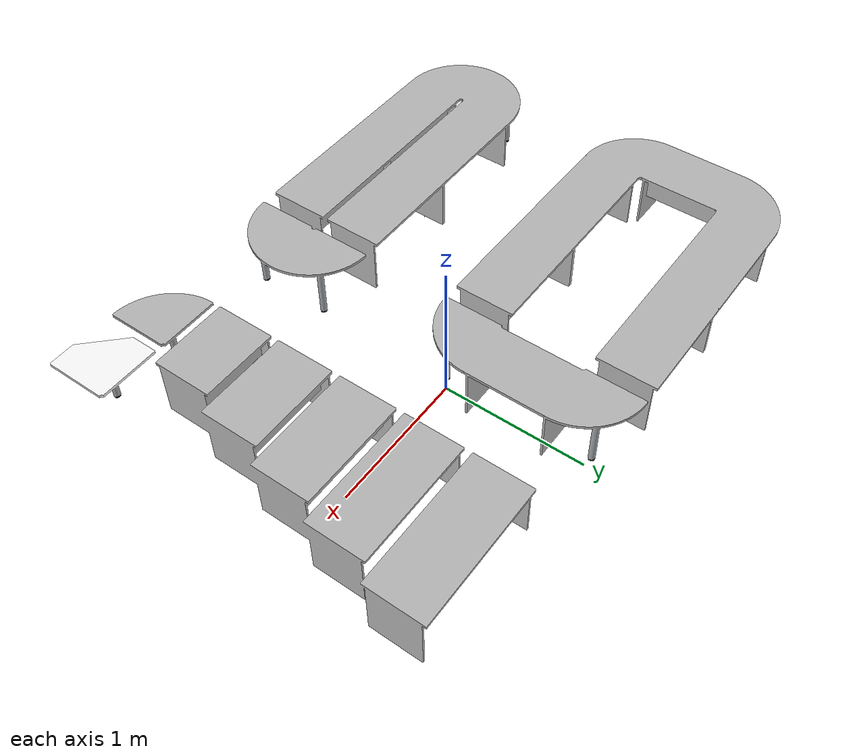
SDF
<?xml version="1.0"?>
<sdf version="1.4">
  <model name="conference_table">
    <static>true</static>
    <link name="link">
      <pose>0 0 0 1.5708 0 0</pose>
      <collision name="collision">
        <geometry>
          <mesh>
             <uri>model://conference_table/conference_table.dae</uri>
	     <scale>0.5 0.5 0.5</scale>
          </mesh>
        </geometry>
      </collision>
      <visual name="visual">
         <geometry>
          <mesh>
            <uri>model://conference_table/conference_table.dae</uri>
		<scale>0.5 0.5 0.5</scale>
          </mesh>
        </geometry>
      </visual>
    </link>
  </model>
</sdf>
